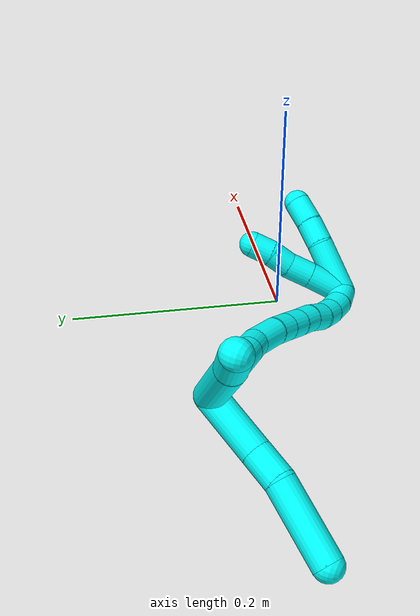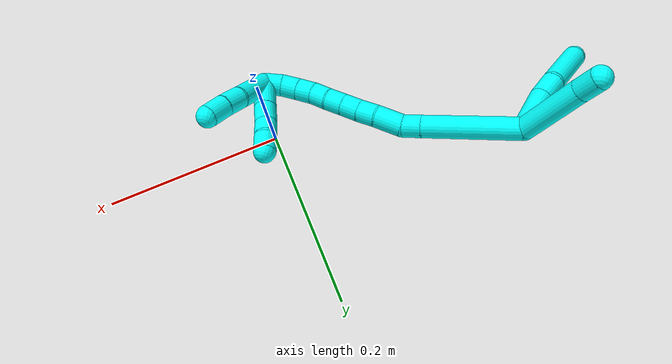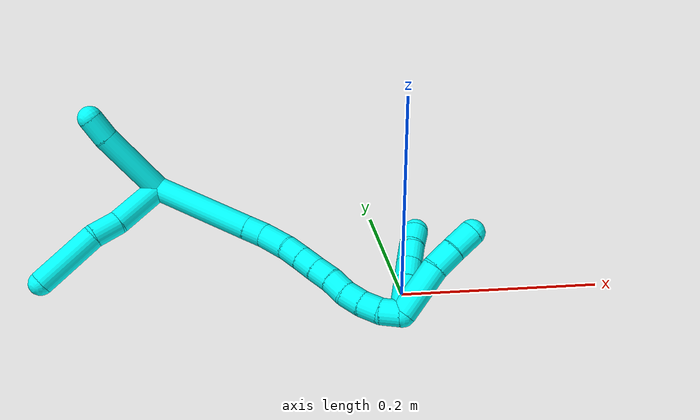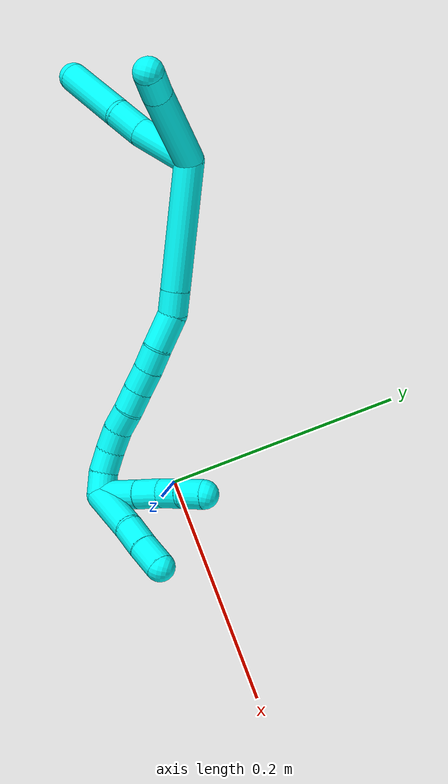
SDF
<sdf version="1.7">
 <world name="default">
  <model name="3">
   <static>0</static>
   <link name="3">
    <collision name="collision-cylinder-e_1_2_8">
     <pose>-0.005625 -0.01129 0.024278 0.435285 -0.207084 -0.045952</pose>
     <geometry><cylinder><radius>0.0125</radius><length>0.054719</length></cylinder></geometry>
     <surface>
      <friction><ode><mu>1.16</mu><mu2>1.16</mu2><slip1>0</slip1><slip2>0</slip2></ode></friction>
      <contact><ode><kp>1e+06</kp><kd>1</kd><max_vel>0</max_vel><min_depth>0.001</min_depth></ode></contact>
     </surface>
    </collision>
    <visual name="visual-cylinder-e_1_2_8">
     <pose>-0.005625 -0.01129 0.024278 0.435285 -0.207084 -0.045952</pose>
     <geometry><cylinder><radius>0.0125</radius><length>0.054719</length></cylinder></geometry>
     <material><ambient>0.003922 1 0.996078 1</ambient></material>
    </visual>
    <collision name="collision-cylinder-e_2_8_9">
     <pose>-0.016259 -0.026533 0.061056 0.306244 -0.364957 -0.056942</pose>
     <geometry><cylinder><radius>0.0125</radius><length>0.028066</length></cylinder></geometry>
     <surface>
      <friction><ode><mu>1.16</mu><mu2>1.16</mu2><slip1>0</slip1><slip2>0</slip2></ode></friction>
      <contact><ode><kp>1e+06</kp><kd>1</kd><max_vel>0</max_vel><min_depth>0.001</min_depth></ode></contact>
     </surface>
    </collision>
    <visual name="visual-cylinder-e_2_8_9">
     <pose>-0.016259 -0.026533 0.061056 0.306244 -0.364957 -0.056942</pose>
     <geometry><cylinder><radius>0.0125</radius><length>0.028066</length></cylinder></geometry>
     <material><ambient>0.003922 1 0.996078 1</ambient></material>
    </visual>
    <collision name="collision-cylinder-e_3_9_6">
     <pose>-0.030933 -0.048309 0.100356 0.586877 -0.291722 -0.088719</pose>
     <geometry><cylinder><radius>0.0125</radius><length>0.067214</length></cylinder></geometry>
     <surface>
      <friction><ode><mu>1.16</mu><mu2>1.16</mu2><slip1>0</slip1><slip2>0</slip2></ode></friction>
      <contact><ode><kp>1e+06</kp><kd>1</kd><max_vel>0</max_vel><min_depth>0.001</min_depth></ode></contact>
     </surface>
    </collision>
    <visual name="visual-cylinder-e_3_9_6">
     <pose>-0.030933 -0.048309 0.100356 0.586877 -0.291722 -0.088719</pose>
     <geometry><cylinder><radius>0.0125</radius><length>0.067214</length></cylinder></geometry>
     <material><ambient>0.003922 1 0.996078 1</ambient></material>
    </visual>
    <collision name="collision-cylinder-e_1_2_10">
     <pose>-0.022227 0.027392 0.013146 -1.12334 -0.631579 0.405548</pose>
     <geometry><cylinder><radius>0.0125</radius><length>0.075291</length></cylinder></geometry>
     <surface>
      <friction><ode><mu>1.16</mu><mu2>1.16</mu2><slip1>0</slip1><slip2>0</slip2></ode></friction>
      <contact><ode><kp>1e+06</kp><kd>1</kd><max_vel>0</max_vel><min_depth>0.001</min_depth></ode></contact>
     </surface>
    </collision>
    <visual name="visual-cylinder-e_1_2_10">
     <pose>-0.022227 0.027392 0.013146 -1.12334 -0.631579 0.405548</pose>
     <geometry><cylinder><radius>0.0125</radius><length>0.075291</length></cylinder></geometry>
     <material><ambient>0.003922 1 0.996078 1</ambient></material>
    </visual>
    <collision name="collision-cylinder-e_2_10_5">
     <pose>-0.051366 0.064566 0.029319 -1.27075 -0.593826 0.443783</pose>
     <geometry><cylinder><radius>0.0125</radius><length>0.024709</length></cylinder></geometry>
     <surface>
      <friction><ode><mu>1.16</mu><mu2>1.16</mu2><slip1>0</slip1><slip2>0</slip2></ode></friction>
      <contact><ode><kp>1e+06</kp><kd>1</kd><max_vel>0</max_vel><min_depth>0.001</min_depth></ode></contact>
     </surface>
    </collision>
    <visual name="visual-cylinder-e_2_10_5">
     <pose>-0.051366 0.064566 0.029319 -1.27075 -0.593826 0.443783</pose>
     <geometry><cylinder><radius>0.0125</radius><length>0.024709</length></cylinder></geometry>
     <material><ambient>0.003922 1 0.996078 1</ambient></material>
    </visual>
    <collision name="collision-cylinder-e_1_2_11">
     <pose>0.053017 -0.006163 -0.006219 2.36072 1.40714 2.23828</pose>
     <geometry><cylinder><radius>0.0125</radius><length>0.107471</length></cylinder></geometry>
     <surface>
      <friction><ode><mu>1.16</mu><mu2>1.16</mu2><slip1>0</slip1><slip2>0</slip2></ode></friction>
      <contact><ode><kp>1e+06</kp><kd>1</kd><max_vel>0</max_vel><min_depth>0.001</min_depth></ode></contact>
     </surface>
    </collision>
    <visual name="visual-cylinder-e_1_2_11">
     <pose>0.053017 -0.006163 -0.006219 2.36072 1.40714 2.23828</pose>
     <geometry><cylinder><radius>0.0125</radius><length>0.107471</length></cylinder></geometry>
     <material><ambient>0.003922 1 0.996078 1</ambient></material>
    </visual>
    <collision name="collision-cylinder-e_2_11_12">
     <pose>0.116331 -0.013413 -0.013626 2.40017 1.41558 2.28887</pose>
     <geometry><cylinder><radius>0.0125</radius><length>0.020843</length></cylinder></geometry>
     <surface>
      <friction><ode><mu>1.16</mu><mu2>1.16</mu2><slip1>0</slip1><slip2>0</slip2></ode></friction>
      <contact><ode><kp>1e+06</kp><kd>1</kd><max_vel>0</max_vel><min_depth>0.001</min_depth></ode></contact>
     </surface>
    </collision>
    <visual name="visual-cylinder-e_2_11_12">
     <pose>0.116331 -0.013413 -0.013626 2.40017 1.41558 2.28887</pose>
     <geometry><cylinder><radius>0.0125</radius><length>0.020843</length></cylinder></geometry>
     <material><ambient>0.003922 1 0.996078 1</ambient></material>
    </visual>
    <collision name="collision-cylinder-e_3_12_13">
     <pose>0.141896 -0.014005 -0.012039 -0.176971 1.3882 -0.147403</pose>
     <geometry><cylinder><radius>0.0125</radius><length>0.031052</length></cylinder></geometry>
     <surface>
      <friction><ode><mu>1.16</mu><mu2>1.16</mu2><slip1>0</slip1><slip2>0</slip2></ode></friction>
      <contact><ode><kp>1e+06</kp><kd>1</kd><max_vel>0</max_vel><min_depth>0.001</min_depth></ode></contact>
     </surface>
    </collision>
    <visual name="visual-cylinder-e_3_12_13">
     <pose>0.141896 -0.014005 -0.012039 -0.176971 1.3882 -0.147403</pose>
     <geometry><cylinder><radius>0.0125</radius><length>0.031052</length></cylinder></geometry>
     <material><ambient>0.003922 1 0.996078 1</ambient></material>
    </visual>
    <collision name="collision-cylinder-e_4_13_14">
     <pose>0.167079 -0.014636 -0.007489 0.566018 1.36183 0.462783</pose>
     <geometry><cylinder><radius>0.0125</radius><length>0.020271</length></cylinder></geometry>
     <surface>
      <friction><ode><mu>1.16</mu><mu2>1.16</mu2><slip1>0</slip1><slip2>0</slip2></ode></friction>
      <contact><ode><kp>1e+06</kp><kd>1</kd><max_vel>0</max_vel><min_depth>0.001</min_depth></ode></contact>
     </surface>
    </collision>
    <visual name="visual-cylinder-e_4_13_14">
     <pose>0.167079 -0.014636 -0.007489 0.566018 1.36183 0.462783</pose>
     <geometry><cylinder><radius>0.0125</radius><length>0.020271</length></cylinder></geometry>
     <material><ambient>0.003922 1 0.996078 1</ambient></material>
    </visual>
    <collision name="collision-cylinder-e_5_14_15">
     <pose>0.186869 -0.016671 -0.003467 0.383916 1.3302 0.302533</pose>
     <geometry><cylinder><radius>0.0125</radius><length>0.020336</length></cylinder></geometry>
     <surface>
      <friction><ode><mu>1.16</mu><mu2>1.16</mu2><slip1>0</slip1><slip2>0</slip2></ode></friction>
      <contact><ode><kp>1e+06</kp><kd>1</kd><max_vel>0</max_vel><min_depth>0.001</min_depth></ode></contact>
     </surface>
    </collision>
    <visual name="visual-cylinder-e_5_14_15">
     <pose>0.186869 -0.016671 -0.003467 0.383916 1.3302 0.302533</pose>
     <geometry><cylinder><radius>0.0125</radius><length>0.020336</length></cylinder></geometry>
     <material><ambient>0.003922 1 0.996078 1</ambient></material>
    </visual>
    <collision name="collision-cylinder-e_6_15_16">
     <pose>0.206525 -0.018237 0.000816 0.312463 1.35537 0.252204</pose>
     <geometry><cylinder><radius>0.0125</radius><length>0.020024</length></cylinder></geometry>
     <surface>
      <friction><ode><mu>1.16</mu><mu2>1.16</mu2><slip1>0</slip1><slip2>0</slip2></ode></friction>
      <contact><ode><kp>1e+06</kp><kd>1</kd><max_vel>0</max_vel><min_depth>0.001</min_depth></ode></contact>
     </surface>
    </collision>
    <visual name="visual-cylinder-e_6_15_16">
     <pose>0.206525 -0.018237 0.000816 0.312463 1.35537 0.252204</pose>
     <geometry><cylinder><radius>0.0125</radius><length>0.020024</length></cylinder></geometry>
     <material><ambient>0.003922 1 0.996078 1</ambient></material>
    </visual>
    <collision name="collision-cylinder-e_7_16_17">
     <pose>0.225734 -0.020754 0.005619 0.591825 1.23093 0.42463</pose>
     <geometry><cylinder><radius>0.0125</radius><length>0.02</length></cylinder></geometry>
     <surface>
      <friction><ode><mu>1.16</mu><mu2>1.16</mu2><slip1>0</slip1><slip2>0</slip2></ode></friction>
      <contact><ode><kp>1e+06</kp><kd>1</kd><max_vel>0</max_vel><min_depth>0.001</min_depth></ode></contact>
     </surface>
    </collision>
    <visual name="visual-cylinder-e_7_16_17">
     <pose>0.225734 -0.020754 0.005619 0.591825 1.23093 0.42463</pose>
     <geometry><cylinder><radius>0.0125</radius><length>0.02</length></cylinder></geometry>
     <material><ambient>0.003922 1 0.996078 1</ambient></material>
    </visual>
    <collision name="collision-cylinder-e_8_17_18">
     <pose>0.245068 -0.023309 0.009565 0.53216 1.4335 0.466314</pose>
     <geometry><cylinder><radius>0.0125</radius><length>0.020001</length></cylinder></geometry>
     <surface>
      <friction><ode><mu>1.16</mu><mu2>1.16</mu2><slip1>0</slip1><slip2>0</slip2></ode></friction>
      <contact><ode><kp>1e+06</kp><kd>1</kd><max_vel>0</max_vel><min_depth>0.001</min_depth></ode></contact>
     </surface>
    </collision>
    <visual name="visual-cylinder-e_8_17_18">
     <pose>0.245068 -0.023309 0.009565 0.53216 1.4335 0.466314</pose>
     <geometry><cylinder><radius>0.0125</radius><length>0.020001</length></cylinder></geometry>
     <material><ambient>0.003922 1 0.996078 1</ambient></material>
    </visual>
    <collision name="collision-cylinder-e_9_18_19">
     <pose>0.264937 -0.023246 0.011161 -1.06765 1.48424 -0.993363</pose>
     <geometry><cylinder><radius>0.0125</radius><length>0.020001</length></cylinder></geometry>
     <surface>
      <friction><ode><mu>1.16</mu><mu2>1.16</mu2><slip1>0</slip1><slip2>0</slip2></ode></friction>
      <contact><ode><kp>1e+06</kp><kd>1</kd><max_vel>0</max_vel><min_depth>0.001</min_depth></ode></contact>
     </surface>
    </collision>
    <visual name="visual-cylinder-e_9_18_19">
     <pose>0.264937 -0.023246 0.011161 -1.06765 1.48424 -0.993363</pose>
     <geometry><cylinder><radius>0.0125</radius><length>0.020001</length></cylinder></geometry>
     <material><ambient>0.003922 1 0.996078 1</ambient></material>
    </visual>
    <collision name="collision-cylinder-e_10_19_1">
     <pose>0.284446 -0.020241 0.009622 -2.28693 1.26824 -2.03275</pose>
     <geometry><cylinder><radius>0.0125</radius><length>0.02</length></cylinder></geometry>
     <surface>
      <friction><ode><mu>1.16</mu><mu2>1.16</mu2><slip1>0</slip1><slip2>0</slip2></ode></friction>
      <contact><ode><kp>1e+06</kp><kd>1</kd><max_vel>0</max_vel><min_depth>0.001</min_depth></ode></contact>
     </surface>
    </collision>
    <visual name="visual-cylinder-e_10_19_1">
     <pose>0.284446 -0.020241 0.009622 -2.28693 1.26824 -2.03275</pose>
     <geometry><cylinder><radius>0.0125</radius><length>0.02</length></cylinder></geometry>
     <material><ambient>0.003922 1 0.996078 1</ambient></material>
    </visual>
    <collision name="collision-cylinder-e_1_1_20">
     <pose>0.287635 -0.012849 -0.008544 -2.83431 -0.357716 1.72497</pose>
     <geometry><cylinder><radius>0.0125</radius><length>0.036311</length></cylinder></geometry>
     <surface>
      <friction><ode><mu>1.16</mu><mu2>1.16</mu2><slip1>0</slip1><slip2>0</slip2></ode></friction>
      <contact><ode><kp>1e+06</kp><kd>1</kd><max_vel>0</max_vel><min_depth>0.001</min_depth></ode></contact>
     </surface>
    </collision>
    <visual name="visual-cylinder-e_1_1_20">
     <pose>0.287635 -0.012849 -0.008544 -2.83431 -0.357716 1.72497</pose>
     <geometry><cylinder><radius>0.0125</radius><length>0.036311</length></cylinder></geometry>
     <material><ambient>0.003922 1 0.996078 1</ambient></material>
    </visual>
    <collision name="collision-cylinder-e_2_20_21">
     <pose>0.277113 -0.004795 -0.035172 -2.86921 -0.367562 1.87101</pose>
     <geometry><cylinder><radius>0.0125</radius><length>0.023184</length></cylinder></geometry>
     <surface>
      <friction><ode><mu>1.16</mu><mu2>1.16</mu2><slip1>0</slip1><slip2>0</slip2></ode></friction>
      <contact><ode><kp>1e+06</kp><kd>1</kd><max_vel>0</max_vel><min_depth>0.001</min_depth></ode></contact>
     </surface>
    </collision>
    <visual name="visual-cylinder-e_2_20_21">
     <pose>0.277113 -0.004795 -0.035172 -2.86921 -0.367562 1.87101</pose>
     <geometry><cylinder><radius>0.0125</radius><length>0.023184</length></cylinder></geometry>
     <material><ambient>0.003922 1 0.996078 1</ambient></material>
    </visual>
    <collision name="collision-cylinder-e_3_21_22">
     <pose>0.269627 0.002439 -0.054173 -2.67488 -0.332714 1.23007</pose>
     <geometry><cylinder><radius>0.0125</radius><length>0.020335</length></cylinder></geometry>
     <surface>
      <friction><ode><mu>1.16</mu><mu2>1.16</mu2><slip1>0</slip1><slip2>0</slip2></ode></friction>
      <contact><ode><kp>1e+06</kp><kd>1</kd><max_vel>0</max_vel><min_depth>0.001</min_depth></ode></contact>
     </surface>
    </collision>
    <visual name="visual-cylinder-e_3_21_22">
     <pose>0.269627 0.002439 -0.054173 -2.67488 -0.332714 1.23007</pose>
     <geometry><cylinder><radius>0.0125</radius><length>0.020335</length></cylinder></geometry>
     <material><ambient>0.003922 1 0.996078 1</ambient></material>
    </visual>
    <collision name="collision-cylinder-e_4_22_4">
     <pose>0.263461 0.009019 -0.072164 -2.90631 -0.28597 1.76686</pose>
     <geometry><cylinder><radius>0.0125</radius><length>0.020171</length></cylinder></geometry>
     <surface>
      <friction><ode><mu>1.16</mu><mu2>1.16</mu2><slip1>0</slip1><slip2>0</slip2></ode></friction>
      <contact><ode><kp>1e+06</kp><kd>1</kd><max_vel>0</max_vel><min_depth>0.001</min_depth></ode></contact>
     </surface>
    </collision>
    <visual name="visual-cylinder-e_4_22_4">
     <pose>0.263461 0.009019 -0.072164 -2.90631 -0.28597 1.76686</pose>
     <geometry><cylinder><radius>0.0125</radius><length>0.020171</length></cylinder></geometry>
     <material><ambient>0.003922 1 0.996078 1</ambient></material>
    </visual>
    <collision name="collision-cylinder-e_1_1_23">
     <pose>0.299113 -0.000439 -0.01028 -2.36722 0.201238 -0.485417</pose>
     <geometry><cylinder><radius>0.0125</radius><length>0.051242</length></cylinder></geometry>
     <surface>
      <friction><ode><mu>1.16</mu><mu2>1.16</mu2><slip1>0</slip1><slip2>0</slip2></ode></friction>
      <contact><ode><kp>1e+06</kp><kd>1</kd><max_vel>0</max_vel><min_depth>0.001</min_depth></ode></contact>
     </surface>
    </collision>
    <visual name="visual-cylinder-e_1_1_23">
     <pose>0.299113 -0.000439 -0.01028 -2.36722 0.201238 -0.485417</pose>
     <geometry><cylinder><radius>0.0125</radius><length>0.051242</length></cylinder></geometry>
     <material><ambient>0.003922 1 0.996078 1</ambient></material>
    </visual>
    <collision name="collision-cylinder-e_2_23_24">
     <pose>0.308372 0.024071 -0.03723 -2.48386 0.348787 -0.953169</pose>
     <geometry><cylinder><radius>0.0125</radius><length>0.024214</length></cylinder></geometry>
     <surface>
      <friction><ode><mu>1.16</mu><mu2>1.16</mu2><slip1>0</slip1><slip2>0</slip2></ode></friction>
      <contact><ode><kp>1e+06</kp><kd>1</kd><max_vel>0</max_vel><min_depth>0.001</min_depth></ode></contact>
     </surface>
    </collision>
    <visual name="visual-cylinder-e_2_23_24">
     <pose>0.308372 0.024071 -0.03723 -2.48386 0.348787 -0.953169</pose>
     <geometry><cylinder><radius>0.0125</radius><length>0.024214</length></cylinder></geometry>
     <material><ambient>0.003922 1 0.996078 1</ambient></material>
    </visual>
    <collision name="collision-cylinder-e_3_24_3">
     <pose>0.316693 0.037297 -0.055918 -2.567 0.347871 -1.073</pose>
     <geometry><cylinder><radius>0.0125</radius><length>0.024544</length></cylinder></geometry>
     <surface>
      <friction><ode><mu>1.16</mu><mu2>1.16</mu2><slip1>0</slip1><slip2>0</slip2></ode></friction>
      <contact><ode><kp>1e+06</kp><kd>1</kd><max_vel>0</max_vel><min_depth>0.001</min_depth></ode></contact>
     </surface>
    </collision>
    <visual name="visual-cylinder-e_3_24_3">
     <pose>0.316693 0.037297 -0.055918 -2.567 0.347871 -1.073</pose>
     <geometry><cylinder><radius>0.0125</radius><length>0.024544</length></cylinder></geometry>
     <material><ambient>0.003922 1 0.996078 1</ambient></material>
    </visual>
    <collision name="collision-sphere-3">
     <pose>0.320877 0.043568 -0.065603 0 -0 0</pose>
     <geometry><sphere><radius>0.0125</radius></sphere></geometry>
     <surface>
      <friction><ode><mu>1.16</mu><mu2>1.16</mu2><slip1>0</slip1><slip2>0</slip2></ode></friction>
      <contact><ode><kp>1e+06</kp><kd>1</kd><max_vel>0</max_vel><min_depth>0.001</min_depth></ode></contact>
     </surface>
    </collision>
    <visual name="visual-sphere-3">
     <pose>0.320877 0.043568 -0.065603 0 -0 0</pose>
     <geometry><sphere><radius>0.0125</radius></sphere></geometry>
     <material><ambient>0.003922 1 0.996078 1</ambient></material>
    </visual>
    <collision name="collision-sphere-24">
     <pose>0.31251 0.031027 -0.046234 0 -0 0</pose>
     <geometry><sphere><radius>0.0125</radius></sphere></geometry>
     <surface>
      <friction><ode><mu>1.16</mu><mu2>1.16</mu2><slip1>0</slip1><slip2>0</slip2></ode></friction>
      <contact><ode><kp>1e+06</kp><kd>1</kd><max_vel>0</max_vel><min_depth>0.001</min_depth></ode></contact>
     </surface>
    </collision>
    <visual name="visual-sphere-24">
     <pose>0.31251 0.031027 -0.046234 0 -0 0</pose>
     <geometry><sphere><radius>0.0125</radius></sphere></geometry>
     <material><ambient>0.003922 1 0.996078 1</ambient></material>
    </visual>
    <collision name="collision-sphere-23">
     <pose>0.304234 0.017116 -0.028225 0 -0 0</pose>
     <geometry><sphere><radius>0.0125</radius></sphere></geometry>
     <surface>
      <friction><ode><mu>1.16</mu><mu2>1.16</mu2><slip1>0</slip1><slip2>0</slip2></ode></friction>
      <contact><ode><kp>1e+06</kp><kd>1</kd><max_vel>0</max_vel><min_depth>0.001</min_depth></ode></contact>
     </surface>
    </collision>
    <visual name="visual-sphere-23">
     <pose>0.304234 0.017116 -0.028225 0 -0 0</pose>
     <geometry><sphere><radius>0.0125</radius></sphere></geometry>
     <material><ambient>0.003922 1 0.996078 1</ambient></material>
    </visual>
    <collision name="collision-sphere-4">
     <pose>0.260616 0.011274 -0.081573 0 -0 0</pose>
     <geometry><sphere><radius>0.0125</radius></sphere></geometry>
     <surface>
      <friction><ode><mu>1.16</mu><mu2>1.16</mu2><slip1>0</slip1><slip2>0</slip2></ode></friction>
      <contact><ode><kp>1e+06</kp><kd>1</kd><max_vel>0</max_vel><min_depth>0.001</min_depth></ode></contact>
     </surface>
    </collision>
    <visual name="visual-sphere-4">
     <pose>0.260616 0.011274 -0.081573 0 -0 0</pose>
     <geometry><sphere><radius>0.0125</radius></sphere></geometry>
     <material><ambient>0.003922 1 0.996078 1</ambient></material>
    </visual>
    <collision name="collision-sphere-22">
     <pose>0.266306 0.006763 -0.062755 0 -0 0</pose>
     <geometry><sphere><radius>0.0125</radius></sphere></geometry>
     <surface>
      <friction><ode><mu>1.16</mu><mu2>1.16</mu2><slip1>0</slip1><slip2>0</slip2></ode></friction>
      <contact><ode><kp>1e+06</kp><kd>1</kd><max_vel>0</max_vel><min_depth>0.001</min_depth></ode></contact>
     </surface>
    </collision>
    <visual name="visual-sphere-22">
     <pose>0.266306 0.006763 -0.062755 0 -0 0</pose>
     <geometry><sphere><radius>0.0125</radius></sphere></geometry>
     <material><ambient>0.003922 1 0.996078 1</ambient></material>
    </visual>
    <collision name="collision-sphere-21">
     <pose>0.272947 -0.001885 -0.045591 0 -0 0</pose>
     <geometry><sphere><radius>0.0125</radius></sphere></geometry>
     <surface>
      <friction><ode><mu>1.16</mu><mu2>1.16</mu2><slip1>0</slip1><slip2>0</slip2></ode></friction>
      <contact><ode><kp>1e+06</kp><kd>1</kd><max_vel>0</max_vel><min_depth>0.001</min_depth></ode></contact>
     </surface>
    </collision>
    <visual name="visual-sphere-21">
     <pose>0.272947 -0.001885 -0.045591 0 -0 0</pose>
     <geometry><sphere><radius>0.0125</radius></sphere></geometry>
     <material><ambient>0.003922 1 0.996078 1</ambient></material>
    </visual>
    <collision name="collision-sphere-20">
     <pose>0.281278 -0.007705 -0.024753 0 -0 0</pose>
     <geometry><sphere><radius>0.0125</radius></sphere></geometry>
     <surface>
      <friction><ode><mu>1.16</mu><mu2>1.16</mu2><slip1>0</slip1><slip2>0</slip2></ode></friction>
      <contact><ode><kp>1e+06</kp><kd>1</kd><max_vel>0</max_vel><min_depth>0.001</min_depth></ode></contact>
     </surface>
    </collision>
    <visual name="visual-sphere-20">
     <pose>0.281278 -0.007705 -0.024753 0 -0 0</pose>
     <geometry><sphere><radius>0.0125</radius></sphere></geometry>
     <material><ambient>0.003922 1 0.996078 1</ambient></material>
    </visual>
    <collision name="collision-sphere-5">
     <pose>-0.058279 0.074349 0.032345 0 -0 0</pose>
     <geometry><sphere><radius>0.0125</radius></sphere></geometry>
     <surface>
      <friction><ode><mu>1.16</mu><mu2>1.16</mu2><slip1>0</slip1><slip2>0</slip2></ode></friction>
      <contact><ode><kp>1e+06</kp><kd>1</kd><max_vel>0</max_vel><min_depth>0.001</min_depth></ode></contact>
     </surface>
    </collision>
    <visual name="visual-sphere-5">
     <pose>-0.058279 0.074349 0.032345 0 -0 0</pose>
     <geometry><sphere><radius>0.0125</radius></sphere></geometry>
     <material><ambient>0.003922 1 0.996078 1</ambient></material>
    </visual>
    <collision name="collision-sphere-10">
     <pose>-0.044453 0.054784 0.026292 0 -0 0</pose>
     <geometry><sphere><radius>0.0125</radius></sphere></geometry>
     <surface>
      <friction><ode><mu>1.16</mu><mu2>1.16</mu2><slip1>0</slip1><slip2>0</slip2></ode></friction>
      <contact><ode><kp>1e+06</kp><kd>1</kd><max_vel>0</max_vel><min_depth>0.001</min_depth></ode></contact>
     </surface>
    </collision>
    <visual name="visual-sphere-10">
     <pose>-0.044453 0.054784 0.026292 0 -0 0</pose>
     <geometry><sphere><radius>0.0125</radius></sphere></geometry>
     <material><ambient>0.003922 1 0.996078 1</ambient></material>
    </visual>
    <collision name="collision-sphere-6">
     <pose>-0.040599 -0.066133 0.127158 0 -0 0</pose>
     <geometry><sphere><radius>0.0125</radius></sphere></geometry>
     <surface>
      <friction><ode><mu>1.16</mu><mu2>1.16</mu2><slip1>0</slip1><slip2>0</slip2></ode></friction>
      <contact><ode><kp>1e+06</kp><kd>1</kd><max_vel>0</max_vel><min_depth>0.001</min_depth></ode></contact>
     </surface>
    </collision>
    <visual name="visual-sphere-6">
     <pose>-0.040599 -0.066133 0.127158 0 -0 0</pose>
     <geometry><sphere><radius>0.0125</radius></sphere></geometry>
     <material><ambient>0.003922 1 0.996078 1</ambient></material>
    </visual>
    <collision name="collision-sphere-9">
     <pose>-0.021268 -0.030485 0.073555 0 -0 0</pose>
     <geometry><sphere><radius>0.0125</radius></sphere></geometry>
     <surface>
      <friction><ode><mu>1.16</mu><mu2>1.16</mu2><slip1>0</slip1><slip2>0</slip2></ode></friction>
      <contact><ode><kp>1e+06</kp><kd>1</kd><max_vel>0</max_vel><min_depth>0.001</min_depth></ode></contact>
     </surface>
    </collision>
    <visual name="visual-sphere-9">
     <pose>-0.021268 -0.030485 0.073555 0 -0 0</pose>
     <geometry><sphere><radius>0.0125</radius></sphere></geometry>
     <material><ambient>0.003922 1 0.996078 1</ambient></material>
    </visual>
    <collision name="collision-sphere-2">
     <geometry><sphere><radius>0.0125</radius></sphere></geometry>
     <surface>
      <friction><ode><mu>1.16</mu><mu2>1.16</mu2><slip1>0</slip1><slip2>0</slip2></ode></friction>
      <contact><ode><kp>1e+06</kp><kd>1</kd><max_vel>0</max_vel><min_depth>0.001</min_depth></ode></contact>
     </surface>
    </collision>
    <visual name="visual-sphere-2">
     <geometry><sphere><radius>0.0125</radius></sphere></geometry>
     <material><ambient>0.003922 1 0.996078 1</ambient></material>
    </visual>
    <collision name="collision-sphere-19">
     <pose>0.2749 -0.022488 0.011578 0 -0 0</pose>
     <geometry><sphere><radius>0.0125</radius></sphere></geometry>
     <surface>
      <friction><ode><mu>1.16</mu><mu2>1.16</mu2><slip1>0</slip1><slip2>0</slip2></ode></friction>
      <contact><ode><kp>1e+06</kp><kd>1</kd><max_vel>0</max_vel><min_depth>0.001</min_depth></ode></contact>
     </surface>
    </collision>
    <visual name="visual-sphere-19">
     <pose>0.2749 -0.022488 0.011578 0 -0 0</pose>
     <geometry><sphere><radius>0.0125</radius></sphere></geometry>
     <material><ambient>0.003922 1 0.996078 1</ambient></material>
    </visual>
    <collision name="collision-sphere-8">
     <pose>-0.011251 -0.02258 0.048557 0 -0 0</pose>
     <geometry><sphere><radius>0.0125</radius></sphere></geometry>
     <surface>
      <friction><ode><mu>1.16</mu><mu2>1.16</mu2><slip1>0</slip1><slip2>0</slip2></ode></friction>
      <contact><ode><kp>1e+06</kp><kd>1</kd><max_vel>0</max_vel><min_depth>0.001</min_depth></ode></contact>
     </surface>
    </collision>
    <visual name="visual-sphere-8">
     <pose>-0.011251 -0.02258 0.048557 0 -0 0</pose>
     <geometry><sphere><radius>0.0125</radius></sphere></geometry>
     <material><ambient>0.003922 1 0.996078 1</ambient></material>
    </visual>
    <collision name="collision-sphere-11">
     <pose>0.106035 -0.012325 -0.012437 0 -0 0</pose>
     <geometry><sphere><radius>0.0125</radius></sphere></geometry>
     <surface>
      <friction><ode><mu>1.16</mu><mu2>1.16</mu2><slip1>0</slip1><slip2>0</slip2></ode></friction>
      <contact><ode><kp>1e+06</kp><kd>1</kd><max_vel>0</max_vel><min_depth>0.001</min_depth></ode></contact>
     </surface>
    </collision>
    <visual name="visual-sphere-11">
     <pose>0.106035 -0.012325 -0.012437 0 -0 0</pose>
     <geometry><sphere><radius>0.0125</radius></sphere></geometry>
     <material><ambient>0.003922 1 0.996078 1</ambient></material>
    </visual>
    <collision name="collision-sphere-12">
     <pose>0.126627 -0.014501 -0.014814 0 -0 0</pose>
     <geometry><sphere><radius>0.0125</radius></sphere></geometry>
     <surface>
      <friction><ode><mu>1.16</mu><mu2>1.16</mu2><slip1>0</slip1><slip2>0</slip2></ode></friction>
      <contact><ode><kp>1e+06</kp><kd>1</kd><max_vel>0</max_vel><min_depth>0.001</min_depth></ode></contact>
     </surface>
    </collision>
    <visual name="visual-sphere-12">
     <pose>0.126627 -0.014501 -0.014814 0 -0 0</pose>
     <geometry><sphere><radius>0.0125</radius></sphere></geometry>
     <material><ambient>0.003922 1 0.996078 1</ambient></material>
    </visual>
    <collision name="collision-sphere-13">
     <pose>0.157164 -0.013509 -0.009263 0 -0 0</pose>
     <geometry><sphere><radius>0.0125</radius></sphere></geometry>
     <surface>
      <friction><ode><mu>1.16</mu><mu2>1.16</mu2><slip1>0</slip1><slip2>0</slip2></ode></friction>
      <contact><ode><kp>1e+06</kp><kd>1</kd><max_vel>0</max_vel><min_depth>0.001</min_depth></ode></contact>
     </surface>
    </collision>
    <visual name="visual-sphere-13">
     <pose>0.157164 -0.013509 -0.009263 0 -0 0</pose>
     <geometry><sphere><radius>0.0125</radius></sphere></geometry>
     <material><ambient>0.003922 1 0.996078 1</ambient></material>
    </visual>
    <collision name="collision-sphere-14">
     <pose>0.176994 -0.015764 -0.005714 0 -0 0</pose>
     <geometry><sphere><radius>0.0125</radius></sphere></geometry>
     <surface>
      <friction><ode><mu>1.16</mu><mu2>1.16</mu2><slip1>0</slip1><slip2>0</slip2></ode></friction>
      <contact><ode><kp>1e+06</kp><kd>1</kd><max_vel>0</max_vel><min_depth>0.001</min_depth></ode></contact>
     </surface>
    </collision>
    <visual name="visual-sphere-14">
     <pose>0.176994 -0.015764 -0.005714 0 -0 0</pose>
     <geometry><sphere><radius>0.0125</radius></sphere></geometry>
     <material><ambient>0.003922 1 0.996078 1</ambient></material>
    </visual>
    <collision name="collision-sphere-15">
     <pose>0.196744 -0.017579 -0.001221 0 -0 0</pose>
     <geometry><sphere><radius>0.0125</radius></sphere></geometry>
     <surface>
      <friction><ode><mu>1.16</mu><mu2>1.16</mu2><slip1>0</slip1><slip2>0</slip2></ode></friction>
      <contact><ode><kp>1e+06</kp><kd>1</kd><max_vel>0</max_vel><min_depth>0.001</min_depth></ode></contact>
     </surface>
    </collision>
    <visual name="visual-sphere-15">
     <pose>0.196744 -0.017579 -0.001221 0 -0 0</pose>
     <geometry><sphere><radius>0.0125</radius></sphere></geometry>
     <material><ambient>0.003922 1 0.996078 1</ambient></material>
    </visual>
    <collision name="collision-sphere-16">
     <pose>0.216305 -0.018895 0.002852 0 -0 0</pose>
     <geometry><sphere><radius>0.0125</radius></sphere></geometry>
     <surface>
      <friction><ode><mu>1.16</mu><mu2>1.16</mu2><slip1>0</slip1><slip2>0</slip2></ode></friction>
      <contact><ode><kp>1e+06</kp><kd>1</kd><max_vel>0</max_vel><min_depth>0.001</min_depth></ode></contact>
     </surface>
    </collision>
    <visual name="visual-sphere-16">
     <pose>0.216305 -0.018895 0.002852 0 -0 0</pose>
     <geometry><sphere><radius>0.0125</radius></sphere></geometry>
     <material><ambient>0.003922 1 0.996078 1</ambient></material>
    </visual>
    <collision name="collision-sphere-17">
     <pose>0.235162 -0.022614 0.008386 0 -0 0</pose>
     <geometry><sphere><radius>0.0125</radius></sphere></geometry>
     <surface>
      <friction><ode><mu>1.16</mu><mu2>1.16</mu2><slip1>0</slip1><slip2>0</slip2></ode></friction>
      <contact><ode><kp>1e+06</kp><kd>1</kd><max_vel>0</max_vel><min_depth>0.001</min_depth></ode></contact>
     </surface>
    </collision>
    <visual name="visual-sphere-17">
     <pose>0.235162 -0.022614 0.008386 0 -0 0</pose>
     <geometry><sphere><radius>0.0125</radius></sphere></geometry>
     <material><ambient>0.003922 1 0.996078 1</ambient></material>
    </visual>
    <collision name="collision-sphere-18">
     <pose>0.254974 -0.024003 0.010744 0 -0 0</pose>
     <geometry><sphere><radius>0.0125</radius></sphere></geometry>
     <surface>
      <friction><ode><mu>1.16</mu><mu2>1.16</mu2><slip1>0</slip1><slip2>0</slip2></ode></friction>
      <contact><ode><kp>1e+06</kp><kd>1</kd><max_vel>0</max_vel><min_depth>0.001</min_depth></ode></contact>
     </surface>
    </collision>
    <visual name="visual-sphere-18">
     <pose>0.254974 -0.024003 0.010744 0 -0 0</pose>
     <geometry><sphere><radius>0.0125</radius></sphere></geometry>
     <material><ambient>0.003922 1 0.996078 1</ambient></material>
    </visual>
    <collision name="collision-sphere-1">
     <pose>0.293992 -0.017993 0.007666 0 -0 0</pose>
     <geometry><sphere><radius>0.0125</radius></sphere></geometry>
     <surface>
      <friction><ode><mu>1.16</mu><mu2>1.16</mu2><slip1>0</slip1><slip2>0</slip2></ode></friction>
      <contact><ode><kp>1e+06</kp><kd>1</kd><max_vel>0</max_vel><min_depth>0.001</min_depth></ode></contact>
     </surface>
    </collision>
    <visual name="visual-sphere-1">
     <pose>0.293992 -0.017993 0.007666 0 -0 0</pose>
     <geometry><sphere><radius>0.0125</radius></sphere></geometry>
     <material><ambient>0.003922 1 0.996078 1</ambient></material>
    </visual>
    <inertial>
     <pose>0.128936 -0.005268 0.005607 0 -0 0</pose>
     <mass>0.75</mass>
     <inertia>
      <ixx>0.000117</ixx>
      <ixy>0</ixy>
      <ixz>0</ixz>
      <iyy>0.00021</iyy>
      <iyz>0</iyz>
      <izz>-9.5e-05</izz>
     </inertia>
    </inertial>
   </link>
   <pose>-0.241637 0.108887 0.083211 1.68412 0.17656 -0.619411</pose>
  </model>
 </world>
</sdf>
